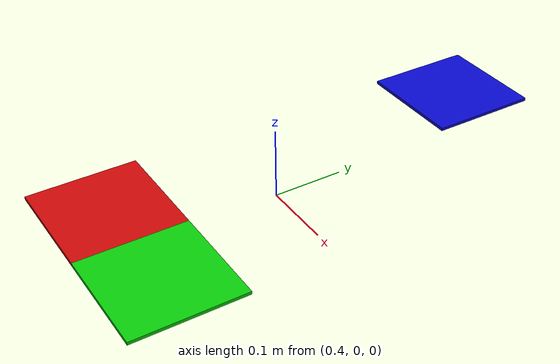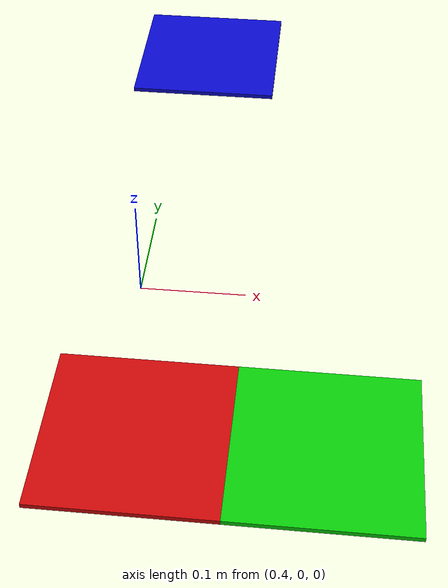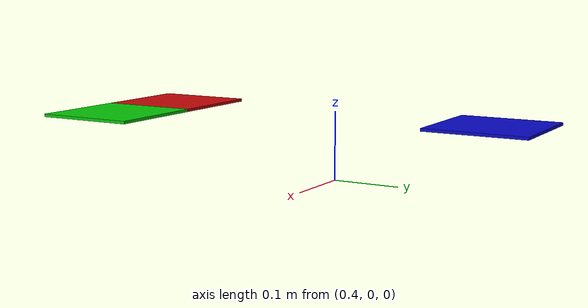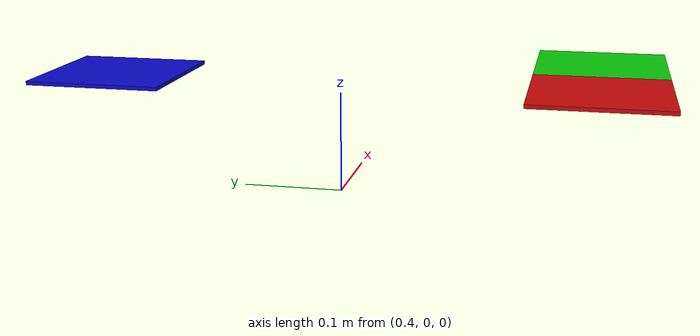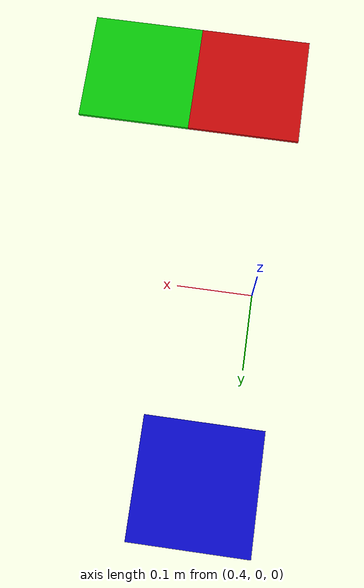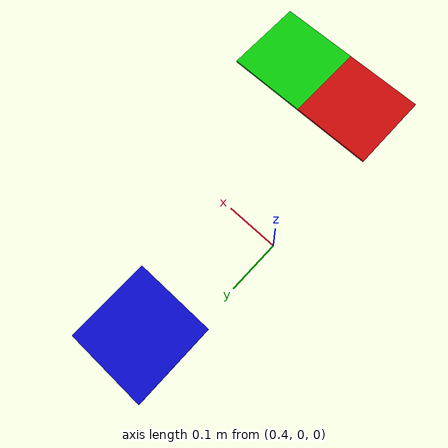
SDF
<?xml version="1.0"?>
<sdf version="1.6">
  <!-- Optional visual-only placement guide. It is spawned by the sorting
       launch file and is deliberately absent from visual-servo scenes. -->
  <model name="sorting_pads">
    <static>true</static>
    <link name="pads_link">
      <visual name="red_pad">
        <pose>0.44 -0.25 0.102 0 0 0</pose>
        <geometry><box><size>0.14 0.14 0.004</size></box></geometry>
        <material>
          <ambient>0.45 0.02 0.02 1</ambient>
          <diffuse>0.8 0.03 0.03 1</diffuse>
        </material>
      </visual>
      <visual name="green_pad">
        <pose>0.58 -0.25 0.102 0 0 0</pose>
        <geometry><box><size>0.14 0.14 0.004</size></box></geometry>
        <material>
          <ambient>0.02 0.40 0.02 1</ambient>
          <diffuse>0.03 0.8 0.03 1</diffuse>
        </material>
      </visual>
      <visual name="blue_pad">
        <pose>0.44 0.25 0.102 0 0 0</pose>
        <geometry><box><size>0.14 0.14 0.004</size></box></geometry>
        <material>
          <ambient>0.02 0.02 0.45 1</ambient>
          <diffuse>0.03 0.03 0.8 1</diffuse>
        </material>
      </visual>
    </link>
  </model>
</sdf>
